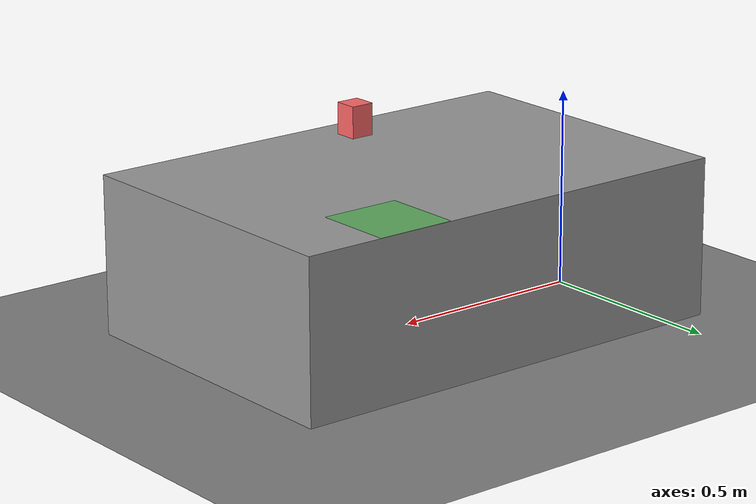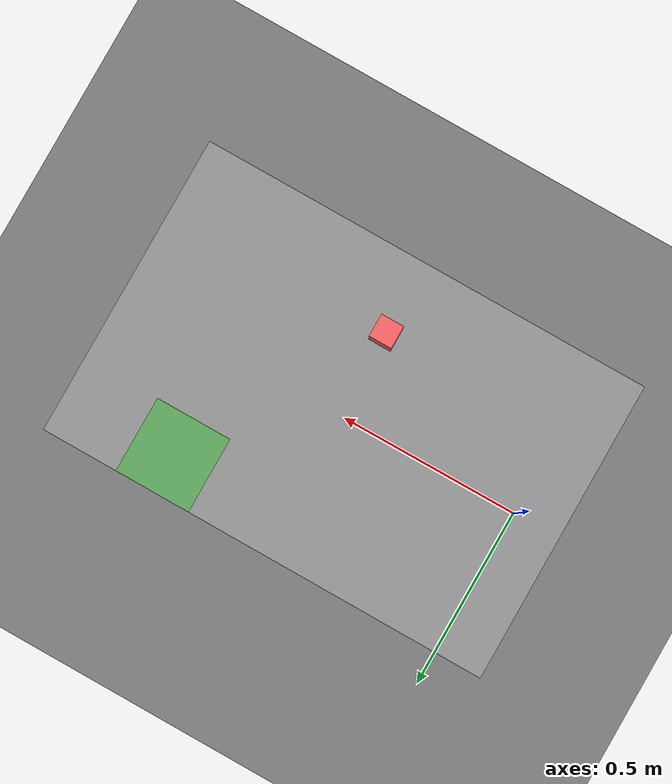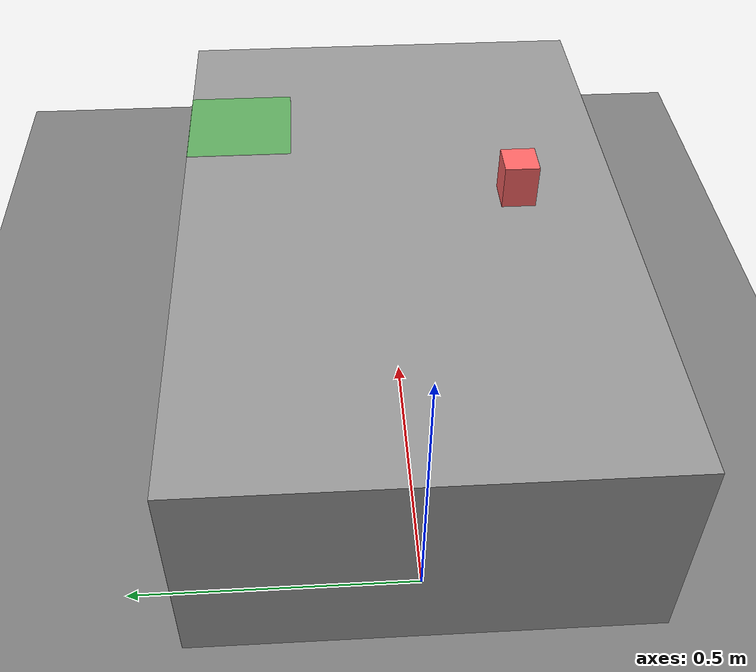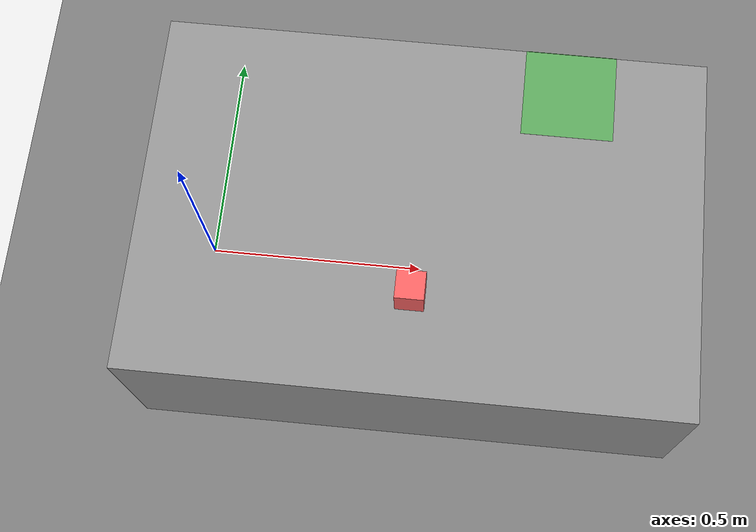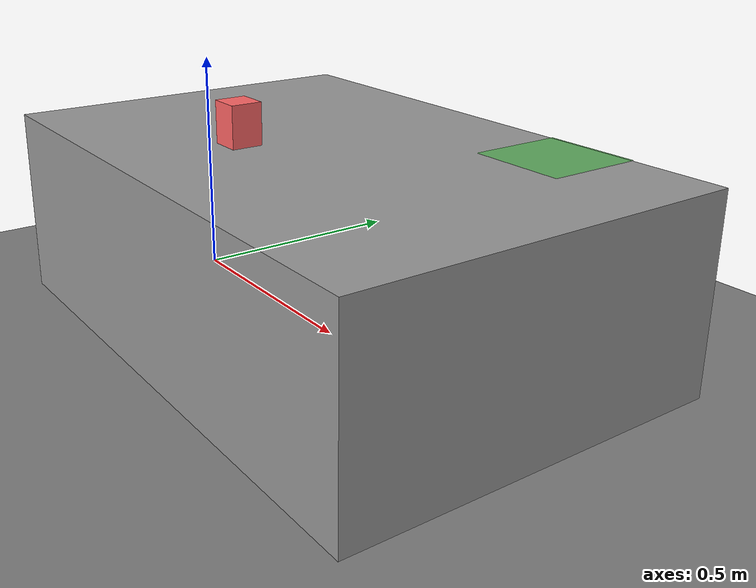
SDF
<?xml version="1.0"?>
<sdf version="1.6">
  <world name="pick_place_training">

    <!-- 物理引擎设置 -->
    <physics type="ode">
      <max_step_size>0.001</max_step_size>
      <real_time_factor>1.0</real_time_factor>
      <real_time_update_rate>1000</real_time_update_rate>
      <gravity>0 0 -9.81</gravity>
    </physics>

    <!-- 场景设置 -->
    <scene>
      <ambient>0.4 0.4 0.4 1</ambient>
      <background>0.7 0.7 0.7 1</background>
      <shadows>true</shadows>
    </scene>

    <!-- 光照 -->
    <light name="sun" type="directional">
      <pose>0 0 10 0 0 0</pose>
      <diffuse>0.8 0.8 0.8 1</diffuse>
      <specular>0.2 0.2 0.2 1</specular>
      <direction>-0.5 0.5 -1.0</direction>
      <cast_shadows>true</cast_shadows>
    </light>

    <!-- 地面 -->
    <model name="ground_plane">
      <static>true</static>
      <link name="link">
        <collision name="collision">
          <geometry>
            <plane><normal>0 0 1</normal></plane>
          </geometry>
        </collision>
        <visual name="visual">
          <geometry>
            <plane><normal>0 0 1</normal><size>100 100</size></plane>
          </geometry>
          <material>
            <ambient>0.5 0.5 0.5 1</ambient>
            <diffuse>0.5 0.5 0.5 1</diffuse>
          </material>
        </visual>
      </link>
    </model>

    <!-- 操作台 -->
    <model name="work_table">
      <static>true</static>
      <pose>0.5 0 0.2 0 0 0</pose>
      <link name="table_link">
        <collision name="table_collision">
          <geometry>
            <box><size>1.2 0.8 0.4</size></box>
          </geometry>
        </collision>
        <visual name="table_visual">
          <geometry>
            <box><size>1.2 0.8 0.4</size></box>
          </geometry>
          <material>
            <ambient>0.6 0.6 0.6 1</ambient>
            <diffuse>0.6 0.6 0.6 1</diffuse>
          </material>
        </visual>
      </link>
    </model>

    <!-- 目标区域标记 -->
    <model name="target_area">
      <static>true</static>
      <pose>0.8 0.3 0.401 0 0 0</pose>
      <link name="marker_link">
        <visual name="marker_visual">
          <geometry>
            <box><size>0.2 0.2 0.001</size></box>
          </geometry>
          <material>
            <ambient>0.2 0.8 0.2 0.5</ambient>
            <diffuse>0.2 0.8 0.2 0.5</diffuse>
          </material>
        </visual>
      </link>
    </model>

    <!-- 目标零件（使用简化的box，因为OBJ可能太复杂） -->
    <model name="target_part">
      <pose>0.5 -0.2 0.475 0 0 0</pose>
      <link name="part_link">
        <inertial>
          <mass>0.2</mass>
          <inertia>
            <ixx>0.0003</ixx>
            <iyy>0.0003</iyy>
            <izz>0.0003</izz>
          </inertia>
        </inertial>
        <collision name="part_collision">
          <geometry>
            <box><size>0.06 0.06 0.08</size></box>
          </geometry>
          <surface>
            <friction>
              <ode><mu>1.0</mu><mu2>1.0</mu2></ode>
            </friction>
          </surface>
        </collision>
        <visual name="part_visual">
          <geometry>
            <box><size>0.06 0.06 0.08</size></box>
          </geometry>
          <material>
            <ambient>1 0.4 0.4 1</ambient>
            <diffuse>1 0.4 0.4 1</diffuse>
          </material>
        </visual>
      </link>
    </model>

    <!-- RGBD摄像头 -->
    <model name="rgbd_camera">
      <static>true</static>
      <pose>0.5 -0.8 1.2 0 0.5 1.57</pose>
      <link name="camera_link">
        <sensor name="camera" type="depth">
          <update_rate>30</update_rate>
          <camera name="rgbd_camera">
            <horizontal_fov>1.047</horizontal_fov>
            <image>
              <width>640</width>
              <height>480</height>
              <format>R8G8B8</format>
            </image>
            <clip>
              <near>0.1</near>
              <far>10</far>
            </clip>
          </camera>
          <plugin name="camera_plugin" filename="libgazebo_ros_camera.so">
            <ros>
              <namespace>/simulation</namespace>
              <remapping>~/image_raw:=camera/image_raw</remapping>
              <remapping>~/camera_info:=camera/camera_info</remapping>
              <remapping>~/depth/image_raw:=camera/depth/image_raw</remapping>
              <remapping>~/depth/camera_info:=camera/depth/camera_info</remapping>
            </ros>
            <camera_name>rgbd_camera</camera_name>
            <frame_name>camera_link</frame_name>
            <hack_baseline>0.07</hack_baseline>
          </plugin>
        </sensor>
      </link>
    </model>

  </world>
</sdf>
